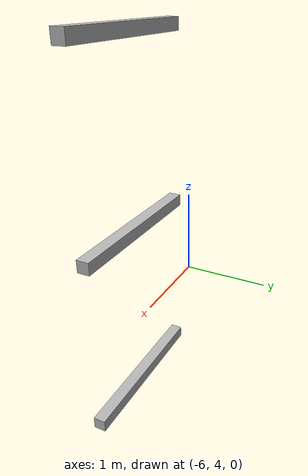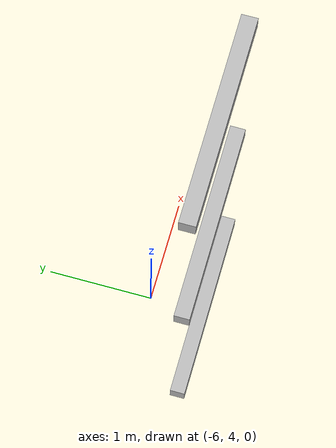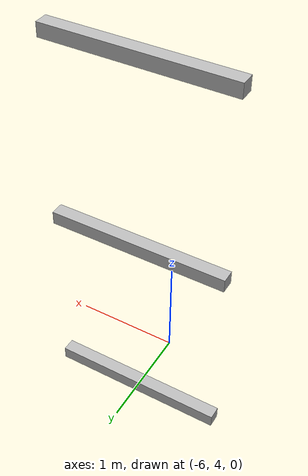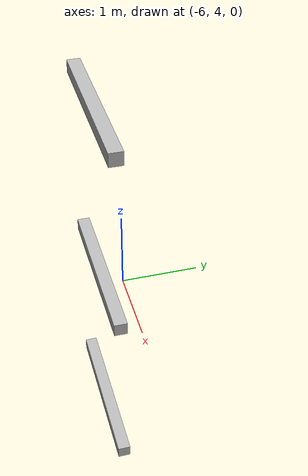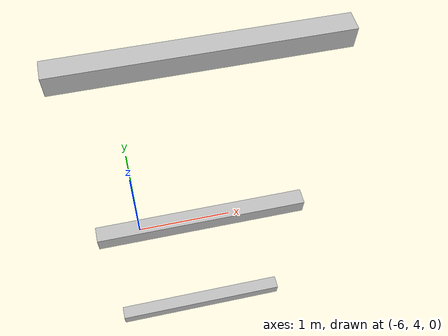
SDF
<sdf version="1.7">
 <world name="default">
  <model name="orthogonal_747_2.000.15_TS">
   <static>1</static>
   <link name="x_link_0_4_0">
    <inertial>
     <mass>1</mass>
     <inertia>
      <ixx>0.166667</ixx>
      <ixy>0</ixy>
      <ixz>0</ixz>
      <iyy>0.166667</iyy>
      <iyz>0</iyz>
      <izz>0.166667</izz>
     </inertia>
    </inertial>
    <pose>1.075 8.6 1.075 0 -0 0</pose>
    <visual name="visual_0">
     <laser_retro>645</laser_retro>
     <geometry><box><size>2 1e-06 0.15</size></box></geometry>
     <material>
      <script><name>Gazebo/Grey</name><uri>file://media/materials/scripts/gazebo.material</uri></script>
      <shader type="pixel"><normal_map>__default__</normal_map></shader>
      <ambient>0.678 0.498 0.659 1</ambient>
      <diffuse>0.7 0.7 0.7 1</diffuse>
      <specular>0.01 0.01 0.01 1</specular>
      <emissive>0 0 0 1</emissive>
     </material>
     <pose>0 -0.075 0 0 -0 0</pose>
     <transparency>1</transparency>
    </visual>
    <visual name="visual_1">
     <laser_retro>646</laser_retro>
     <geometry><box><size>2 1e-06 0.15</size></box></geometry>
     <material>
      <script><name>Gazebo/Grey</name><uri>file://media/materials/scripts/gazebo.material</uri></script>
      <shader type="pixel"><normal_map>__default__</normal_map></shader>
      <ambient>0.447 0.624 0.812 1</ambient>
      <diffuse>0.7 0.7 0.7 1</diffuse>
      <specular>0.01 0.01 0.01 1</specular>
      <emissive>0 0 0 1</emissive>
     </material>
     <pose>0 0.075 0 0 -0 0</pose>
     <transparency>1</transparency>
    </visual>
    <visual name="visual_2">
     <laser_retro>647</laser_retro>
     <geometry><box><size>2 0.15 1e-06</size></box></geometry>
     <material>
      <script><name>Gazebo/Grey</name><uri>file://media/materials/scripts/gazebo.material</uri></script>
      <shader type="pixel"><normal_map>__default__</normal_map></shader>
      <ambient>0.988 0.686 0.243 1</ambient>
      <diffuse>0.7 0.7 0.7 1</diffuse>
      <specular>0.01 0.01 0.01 1</specular>
      <emissive>0 0 0 1</emissive>
     </material>
     <pose>0 0 -0.075 0 -0 0</pose>
     <transparency>1</transparency>
    </visual>
    <visual name="visual_3">
     <laser_retro>648</laser_retro>
     <geometry><box><size>1e-06 0.15 0.15</size></box></geometry>
     <material>
      <script><name>Gazebo/Grey</name><uri>file://media/materials/scripts/gazebo.material</uri></script>
      <shader type="pixel"><normal_map>__default__</normal_map></shader>
      <ambient>0.988 0.914 0.31 1</ambient>
      <diffuse>0.7 0.7 0.7 1</diffuse>
      <specular>0.01 0.01 0.01 1</specular>
      <emissive>0 0 0 1</emissive>
     </material>
     <pose>1 0 0 0 -0 0</pose>
     <transparency>1</transparency>
    </visual>
    <visual name="visual_4">
     <laser_retro>649</laser_retro>
     <geometry><box><size>2 0.15 1e-06</size></box></geometry>
     <material>
      <script><name>Gazebo/Grey</name><uri>file://media/materials/scripts/gazebo.material</uri></script>
      <shader type="pixel"><normal_map>__default__</normal_map></shader>
      <ambient>0.937 0.161 0.161 1</ambient>
      <diffuse>0.7 0.7 0.7 1</diffuse>
      <specular>0.01 0.01 0.01 1</specular>
      <emissive>0 0 0 1</emissive>
     </material>
     <pose>0 0 0.075 0 -0 0</pose>
     <transparency>1</transparency>
    </visual>
    <visual name="visual_5">
     <laser_retro>650</laser_retro>
     <geometry><box><size>1e-06 0.15 0.15</size></box></geometry>
     <material>
      <script><name>Gazebo/Grey</name><uri>file://media/materials/scripts/gazebo.material</uri></script>
      <shader type="pixel"><normal_map>__default__</normal_map></shader>
      <ambient>0.541 0.886 0.204 1</ambient>
      <diffuse>0.7 0.7 0.7 1</diffuse>
      <specular>0.01 0.01 0.01 1</specular>
      <emissive>0 0 0 1</emissive>
     </material>
     <pose>-1 0 0 0 -0 0</pose>
     <transparency>1</transparency>
    </visual>
    <visual name="visual_texture">
     <geometry><box><size>1.9998 0.149985 0.149985</size></box></geometry>
     <material>
      <script>
       <uri>model://BASE_MODELS/simple_block_v2_textured/materials/scripts</uri>
       <uri>model://BASE_MODELS/simple_block_v2_textured/materials/textures</uri>
       <name>metal</name>
      </script>
     </material>
     <laser_retro>651</laser_retro>
    </visual>
    <collision name="collision">
     <geometry><box><size>2 0.15 0.15</size></box></geometry>
     <surface>
      <friction>
       <ode><mu>1</mu><mu2>1</mu2><fdir1>0 0 0</fdir1><slip1>0</slip1><slip2>0</slip2></ode>
       <torsional>
        <coefficient>1</coefficient>
        <patch_radius>0</patch_radius>
        <surface_radius>0</surface_radius>
        <use_patch_radius>1</use_patch_radius>
        <ode><slip>0</slip></ode>
       </torsional>
      </friction>
      <bounce><restitution_coefficient>0</restitution_coefficient><threshold>1e+06</threshold></bounce>
      <contact>
       <collide_without_contact>0</collide_without_contact>
       <collide_without_contact_bitmask>1</collide_without_contact_bitmask>
       <collide_bitmask>1</collide_bitmask>
       <ode>
        <soft_cfm>0</soft_cfm>
        <soft_erp>0.2</soft_erp>
        <kp>1e+13</kp>
        <kd>1</kd>
        <max_vel>0.01</max_vel>
        <min_depth>0</min_depth>
       </ode>
       <bullet>
        <split_impulse>1</split_impulse>
        <split_impulse_penetration_threshold>-0.01</split_impulse_penetration_threshold>
        <soft_cfm>0</soft_cfm>
        <soft_erp>0.2</soft_erp>
        <kp>1e+13</kp>
        <kd>1</kd>
       </bullet>
      </contact>
     </surface>
    </collision>
   </link>
   <link name="x_link_1_4_0">
    <inertial>
     <mass>1</mass>
     <inertia>
      <ixx>0.166667</ixx>
      <ixy>0</ixy>
      <ixz>0</ixz>
      <iyy>0.166667</iyy>
      <iyz>0</iyz>
      <izz>0.166667</izz>
     </inertia>
    </inertial>
    <pose>1.075 8.6 3.225 0 -0 0</pose>
    <visual name="visual_0">
     <laser_retro>1492</laser_retro>
     <geometry><box><size>2 1e-06 0.15</size></box></geometry>
     <material>
      <script><name>Gazebo/Grey</name><uri>file://media/materials/scripts/gazebo.material</uri></script>
      <shader type="pixel"><normal_map>__default__</normal_map></shader>
      <ambient>0.678 0.498 0.659 1</ambient>
      <diffuse>0.7 0.7 0.7 1</diffuse>
      <specular>0.01 0.01 0.01 1</specular>
      <emissive>0 0 0 1</emissive>
     </material>
     <pose>0 -0.075 0 0 -0 0</pose>
     <transparency>1</transparency>
    </visual>
    <visual name="visual_1">
     <laser_retro>1493</laser_retro>
     <geometry><box><size>2 1e-06 0.15</size></box></geometry>
     <material>
      <script><name>Gazebo/Grey</name><uri>file://media/materials/scripts/gazebo.material</uri></script>
      <shader type="pixel"><normal_map>__default__</normal_map></shader>
      <ambient>0.447 0.624 0.812 1</ambient>
      <diffuse>0.7 0.7 0.7 1</diffuse>
      <specular>0.01 0.01 0.01 1</specular>
      <emissive>0 0 0 1</emissive>
     </material>
     <pose>0 0.075 0 0 -0 0</pose>
     <transparency>1</transparency>
    </visual>
    <visual name="visual_2">
     <laser_retro>1494</laser_retro>
     <geometry><box><size>2 0.15 1e-06</size></box></geometry>
     <material>
      <script><name>Gazebo/Grey</name><uri>file://media/materials/scripts/gazebo.material</uri></script>
      <shader type="pixel"><normal_map>__default__</normal_map></shader>
      <ambient>0.988 0.686 0.243 1</ambient>
      <diffuse>0.7 0.7 0.7 1</diffuse>
      <specular>0.01 0.01 0.01 1</specular>
      <emissive>0 0 0 1</emissive>
     </material>
     <pose>0 0 -0.075 0 -0 0</pose>
     <transparency>1</transparency>
    </visual>
    <visual name="visual_3">
     <laser_retro>1495</laser_retro>
     <geometry><box><size>1e-06 0.15 0.15</size></box></geometry>
     <material>
      <script><name>Gazebo/Grey</name><uri>file://media/materials/scripts/gazebo.material</uri></script>
      <shader type="pixel"><normal_map>__default__</normal_map></shader>
      <ambient>0.988 0.914 0.31 1</ambient>
      <diffuse>0.7 0.7 0.7 1</diffuse>
      <specular>0.01 0.01 0.01 1</specular>
      <emissive>0 0 0 1</emissive>
     </material>
     <pose>1 0 0 0 -0 0</pose>
     <transparency>1</transparency>
    </visual>
    <visual name="visual_4">
     <laser_retro>1496</laser_retro>
     <geometry><box><size>2 0.15 1e-06</size></box></geometry>
     <material>
      <script><name>Gazebo/Grey</name><uri>file://media/materials/scripts/gazebo.material</uri></script>
      <shader type="pixel"><normal_map>__default__</normal_map></shader>
      <ambient>0.937 0.161 0.161 1</ambient>
      <diffuse>0.7 0.7 0.7 1</diffuse>
      <specular>0.01 0.01 0.01 1</specular>
      <emissive>0 0 0 1</emissive>
     </material>
     <pose>0 0 0.075 0 -0 0</pose>
     <transparency>1</transparency>
    </visual>
    <visual name="visual_5">
     <laser_retro>1497</laser_retro>
     <geometry><box><size>1e-06 0.15 0.15</size></box></geometry>
     <material>
      <script><name>Gazebo/Grey</name><uri>file://media/materials/scripts/gazebo.material</uri></script>
      <shader type="pixel"><normal_map>__default__</normal_map></shader>
      <ambient>0.541 0.886 0.204 1</ambient>
      <diffuse>0.7 0.7 0.7 1</diffuse>
      <specular>0.01 0.01 0.01 1</specular>
      <emissive>0 0 0 1</emissive>
     </material>
     <pose>-1 0 0 0 -0 0</pose>
     <transparency>1</transparency>
    </visual>
    <visual name="visual_texture">
     <geometry><box><size>1.9998 0.149985 0.149985</size></box></geometry>
     <material>
      <script>
       <uri>model://BASE_MODELS/simple_block_v2_textured/materials/scripts</uri>
       <uri>model://BASE_MODELS/simple_block_v2_textured/materials/textures</uri>
       <name>metal</name>
      </script>
     </material>
     <laser_retro>1498</laser_retro>
    </visual>
    <collision name="collision">
     <geometry><box><size>2 0.15 0.15</size></box></geometry>
     <surface>
      <friction>
       <ode><mu>1</mu><mu2>1</mu2><fdir1>0 0 0</fdir1><slip1>0</slip1><slip2>0</slip2></ode>
       <torsional>
        <coefficient>1</coefficient>
        <patch_radius>0</patch_radius>
        <surface_radius>0</surface_radius>
        <use_patch_radius>1</use_patch_radius>
        <ode><slip>0</slip></ode>
       </torsional>
      </friction>
      <bounce><restitution_coefficient>0</restitution_coefficient><threshold>1e+06</threshold></bounce>
      <contact>
       <collide_without_contact>0</collide_without_contact>
       <collide_without_contact_bitmask>1</collide_without_contact_bitmask>
       <collide_bitmask>1</collide_bitmask>
       <ode>
        <soft_cfm>0</soft_cfm>
        <soft_erp>0.2</soft_erp>
        <kp>1e+13</kp>
        <kd>1</kd>
        <max_vel>0.01</max_vel>
        <min_depth>0</min_depth>
       </ode>
       <bullet>
        <split_impulse>1</split_impulse>
        <split_impulse_penetration_threshold>-0.01</split_impulse_penetration_threshold>
        <soft_cfm>0</soft_cfm>
        <soft_erp>0.2</soft_erp>
        <kp>1e+13</kp>
        <kd>1</kd>
       </bullet>
      </contact>
     </surface>
    </collision>
   </link>
   <link name="x_link_2_4_0">
    <inertial>
     <mass>1</mass>
     <inertia>
      <ixx>0.166667</ixx>
      <ixy>0</ixy>
      <ixz>0</ixz>
      <iyy>0.166667</iyy>
      <iyz>0</iyz>
      <izz>0.166667</izz>
     </inertia>
    </inertial>
    <pose>1.075 8.6 5.375 0 -0 0</pose>
    <visual name="visual_0">
     <laser_retro>2395</laser_retro>
     <geometry><box><size>2 1e-06 0.15</size></box></geometry>
     <material>
      <script><name>Gazebo/Grey</name><uri>file://media/materials/scripts/gazebo.material</uri></script>
      <shader type="pixel"><normal_map>__default__</normal_map></shader>
      <ambient>0.678 0.498 0.659 1</ambient>
      <diffuse>0.7 0.7 0.7 1</diffuse>
      <specular>0.01 0.01 0.01 1</specular>
      <emissive>0 0 0 1</emissive>
     </material>
     <pose>0 -0.075 0 0 -0 0</pose>
     <transparency>1</transparency>
    </visual>
    <visual name="visual_1">
     <laser_retro>2396</laser_retro>
     <geometry><box><size>2 1e-06 0.15</size></box></geometry>
     <material>
      <script><name>Gazebo/Grey</name><uri>file://media/materials/scripts/gazebo.material</uri></script>
      <shader type="pixel"><normal_map>__default__</normal_map></shader>
      <ambient>0.447 0.624 0.812 1</ambient>
      <diffuse>0.7 0.7 0.7 1</diffuse>
      <specular>0.01 0.01 0.01 1</specular>
      <emissive>0 0 0 1</emissive>
     </material>
     <pose>0 0.075 0 0 -0 0</pose>
     <transparency>1</transparency>
    </visual>
    <visual name="visual_2">
     <laser_retro>2397</laser_retro>
     <geometry><box><size>2 0.15 1e-06</size></box></geometry>
     <material>
      <script><name>Gazebo/Grey</name><uri>file://media/materials/scripts/gazebo.material</uri></script>
      <shader type="pixel"><normal_map>__default__</normal_map></shader>
      <ambient>0.988 0.686 0.243 1</ambient>
      <diffuse>0.7 0.7 0.7 1</diffuse>
      <specular>0.01 0.01 0.01 1</specular>
      <emissive>0 0 0 1</emissive>
     </material>
     <pose>0 0 -0.075 0 -0 0</pose>
     <transparency>1</transparency>
    </visual>
    <visual name="visual_3">
     <laser_retro>2398</laser_retro>
     <geometry><box><size>1e-06 0.15 0.15</size></box></geometry>
     <material>
      <script><name>Gazebo/Grey</name><uri>file://media/materials/scripts/gazebo.material</uri></script>
      <shader type="pixel"><normal_map>__default__</normal_map></shader>
      <ambient>0.988 0.914 0.31 1</ambient>
      <diffuse>0.7 0.7 0.7 1</diffuse>
      <specular>0.01 0.01 0.01 1</specular>
      <emissive>0 0 0 1</emissive>
     </material>
     <pose>1 0 0 0 -0 0</pose>
     <transparency>1</transparency>
    </visual>
    <visual name="visual_4">
     <laser_retro>2399</laser_retro>
     <geometry><box><size>2 0.15 1e-06</size></box></geometry>
     <material>
      <script><name>Gazebo/Grey</name><uri>file://media/materials/scripts/gazebo.material</uri></script>
      <shader type="pixel"><normal_map>__default__</normal_map></shader>
      <ambient>0.937 0.161 0.161 1</ambient>
      <diffuse>0.7 0.7 0.7 1</diffuse>
      <specular>0.01 0.01 0.01 1</specular>
      <emissive>0 0 0 1</emissive>
     </material>
     <pose>0 0 0.075 0 -0 0</pose>
     <transparency>1</transparency>
    </visual>
    <visual name="visual_5">
     <laser_retro>2400</laser_retro>
     <geometry><box><size>1e-06 0.15 0.15</size></box></geometry>
     <material>
      <script><name>Gazebo/Grey</name><uri>file://media/materials/scripts/gazebo.material</uri></script>
      <shader type="pixel"><normal_map>__default__</normal_map></shader>
      <ambient>0.541 0.886 0.204 1</ambient>
      <diffuse>0.7 0.7 0.7 1</diffuse>
      <specular>0.01 0.01 0.01 1</specular>
      <emissive>0 0 0 1</emissive>
     </material>
     <pose>-1 0 0 0 -0 0</pose>
     <transparency>1</transparency>
    </visual>
    <visual name="visual_texture">
     <geometry><box><size>1.9998 0.149985 0.149985</size></box></geometry>
     <material>
      <script>
       <uri>model://BASE_MODELS/simple_block_v2_textured/materials/scripts</uri>
       <uri>model://BASE_MODELS/simple_block_v2_textured/materials/textures</uri>
       <name>metal</name>
      </script>
     </material>
     <laser_retro>2401</laser_retro>
    </visual>
    <collision name="collision">
     <geometry><box><size>2 0.15 0.15</size></box></geometry>
     <surface>
      <friction>
       <ode><mu>1</mu><mu2>1</mu2><fdir1>0 0 0</fdir1><slip1>0</slip1><slip2>0</slip2></ode>
       <torsional>
        <coefficient>1</coefficient>
        <patch_radius>0</patch_radius>
        <surface_radius>0</surface_radius>
        <use_patch_radius>1</use_patch_radius>
        <ode><slip>0</slip></ode>
       </torsional>
      </friction>
      <bounce><restitution_coefficient>0</restitution_coefficient><threshold>1e+06</threshold></bounce>
      <contact>
       <collide_without_contact>0</collide_without_contact>
       <collide_without_contact_bitmask>1</collide_without_contact_bitmask>
       <collide_bitmask>1</collide_bitmask>
       <ode>
        <soft_cfm>0</soft_cfm>
        <soft_erp>0.2</soft_erp>
        <kp>1e+13</kp>
        <kd>1</kd>
        <max_vel>0.01</max_vel>
        <min_depth>0</min_depth>
       </ode>
       <bullet>
        <split_impulse>1</split_impulse>
        <split_impulse_penetration_threshold>-0.01</split_impulse_penetration_threshold>
        <soft_cfm>0</soft_cfm>
        <soft_erp>0.2</soft_erp>
        <kp>1e+13</kp>
        <kd>1</kd>
       </bullet>
      </contact>
     </surface>
    </collision>
   </link>
   <pose>-6.47624 -5 -2.5 0 -0 0</pose>
  </model>
 </world>
</sdf>
